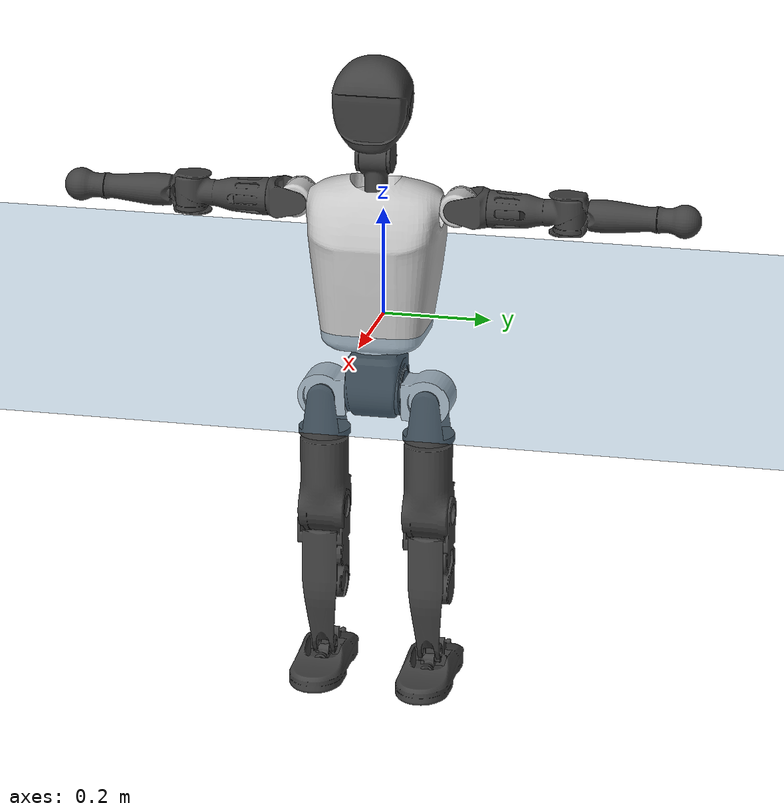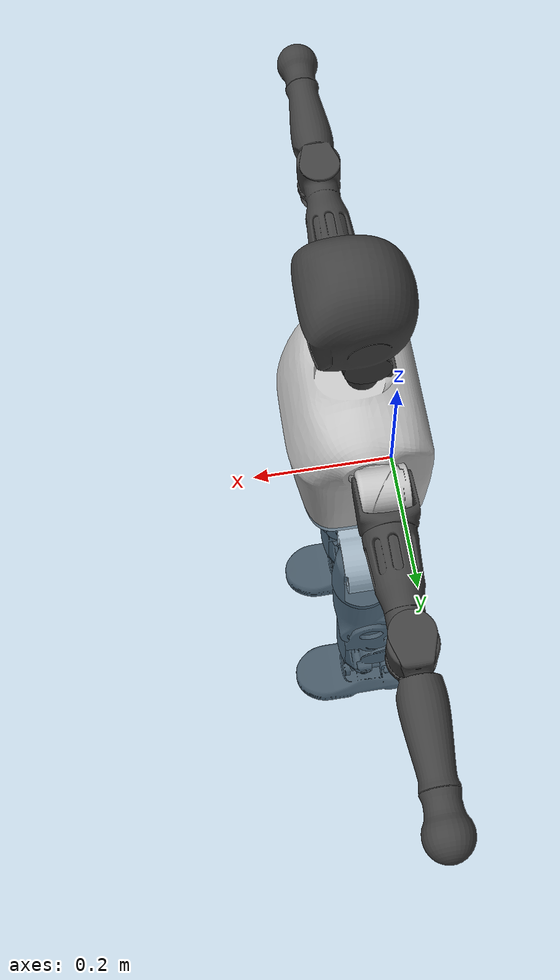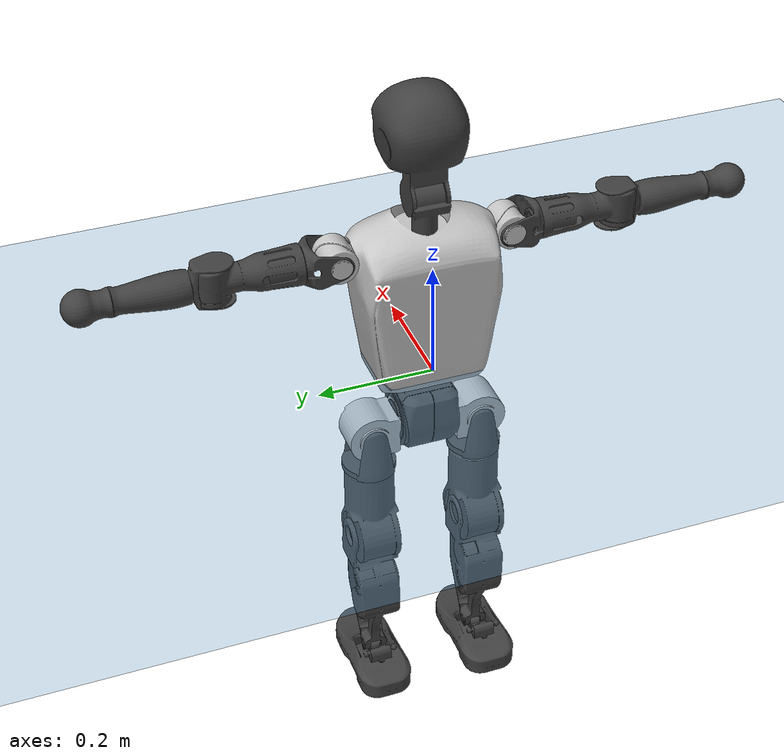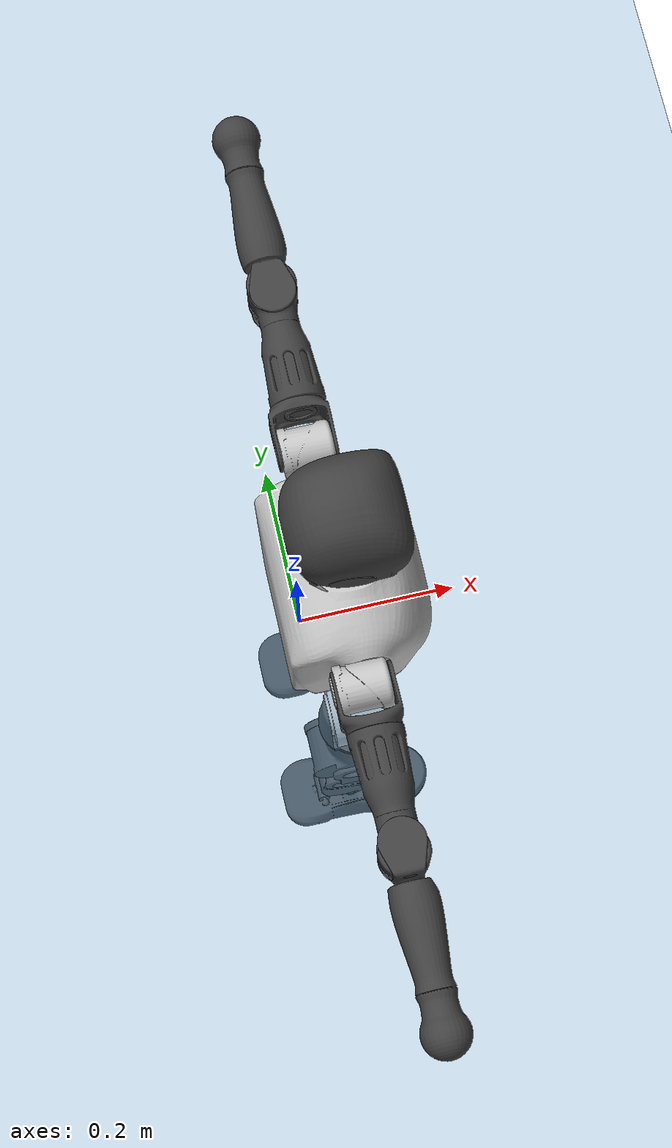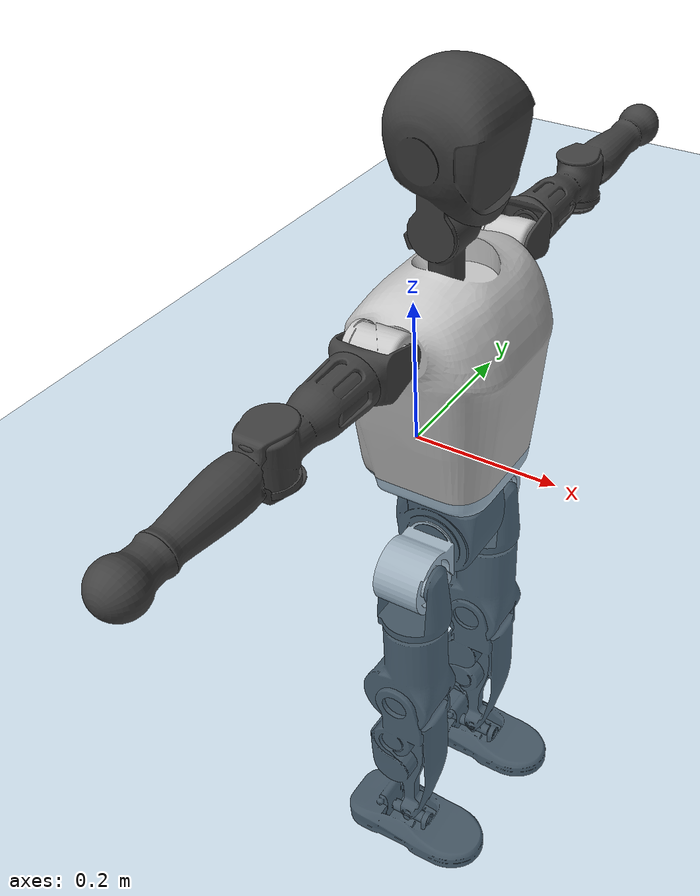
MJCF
<mujoco model="T1">
  <compiler angle="radian" assetdir="assets" balanceinertia="true" inertiafromgeom="false"/>

  <option timestep="0.005" density="1.2" viscosity="2e-05"/>

  <size nkey="1"/>

  <visual>
    <quality shadowsize="8192"/>
    <map shadowclip="0.5"/>
  </visual>

  <default>
    <default class="/">
      <joint armature="0.01" damping="0.01" frictionloss="0.1"/>
      <geom contype="0" conaffinity="0" group="1" solref="-1000 -80"/>
      <site size="0.01 0.005 0.005" group="5"/>
      <general forcelimited="true" biastype="affine" gainprm="25" biasprm="0 -25 -0.6"/>
      <default class="t1">
        <geom rgba="0.25 0.25 0.25 1"/>
        <default class="visual">
          <geom type="mesh" group="2"/>
        </default>
        <default class="collision">
          <geom group="3"/>
        </default>
        <default class="foot">
          <geom size="0.1115 0.05 0.015" type="box" condim="6" group="4" priority="1" solimp="0.015 1 0.015"/>
        </default>
        <default class="reward_collision_sphere">
          <geom group="5" rgba="1 0 0 1"/>
        </default>
      </default>
    </default>
  </default>

  <asset>
    <texture type="skybox" colorspace="auto" name="//unnamed_texture_0" builtin="gradient" rgb1="0.95 0.95 0.95" rgb2="0.95 0.95 0.95" width="100" height="600"/>
    <texture type="2d" colorspace="auto" name="texplane" builtin="checker" rgb1="0.345 0.575 0.748" rgb2="0.345 0.575 0.748" markrgb="1 1 1" width="512" height="512"/>
    <material name="MatPlane" class="/" texture="texplane" texuniform="true" texrepeat="2 2" specular="0.9"/>
    <mesh name="Trunk" class="/" file="Trunk.stl"/>
    <mesh name="H1" class="/" file="H1.stl"/>
    <mesh name="H2" class="/" file="H2.stl"/>
    <mesh name="AL1" class="/" file="AL1.stl"/>
    <mesh name="AL2" class="/" file="AL2.stl"/>
    <mesh name="AL3" class="/" file="AL3.stl"/>
    <mesh name="left_hand_link" class="/" file="left_hand_link.stl"/>
    <mesh name="AR1" class="/" file="AR1.stl"/>
    <mesh name="AR2" class="/" file="AR2.stl"/>
    <mesh name="AR3" class="/" file="AR3.stl"/>
    <mesh name="right_hand_link" class="/" file="right_hand_link.stl"/>
    <mesh name="Waist" class="/" file="Waist.stl"/>
    <mesh name="Hip_Pitch_Left" class="/" file="Hip_Pitch_Left.stl"/>
    <mesh name="Hip_Roll_Left" class="/" file="Hip_Roll_Left.stl"/>
    <mesh name="Hip_Yaw_Left" class="/" file="Hip_Yaw_Left.stl"/>
    <mesh name="Shank_Left" class="/" file="Shank_Left.stl"/>
    <mesh name="Ankle_Cross_Left" class="/" file="Ankle_Cross_Left.stl"/>
    <mesh name="left_foot_link" class="/" file="left_foot_link.stl"/>
    <mesh name="Hip_Pitch_Right" class="/" file="Hip_Pitch_Right.stl"/>
    <mesh name="Hip_Roll_Right" class="/" file="Hip_Roll_Right.stl"/>
    <mesh name="Hip_Yaw_Right" class="/" file="Hip_Yaw_Right.stl"/>
    <mesh name="Shank_Right" class="/" file="Shank_Right.stl"/>
    <mesh name="Ankle_Cross_Right" class="/" file="Ankle_Cross_Right.stl"/>
    <mesh name="right_foot_link" class="/" file="right_foot_link.stl"/>
  </asset>

  <worldbody>
    <geom name="floor" class="/" size="100 100 0.125" type="plane" group="0" material="MatPlane"/>
    <light name="toplight_shadow" class="/" pos="0 0 5" dir="0.0990148 0.0990148 -0.990148" type="directional" ambient="0.04 0.04 0.04" diffuse="0.55 0.55 0.55" specular="0.12 0.12 0.12"/>
    <light name="toplight_fill" class="/" pos="0 0 5" dir="0.0990148 0.0990148 -0.990148" type="directional" castshadow="false" ambient="0.04 0.04 0.04" diffuse="0.3 0.3 0.3" specular="0.08 0.08 0.08"/>
    <body name="trunk" childclass="t1" pos="0.000795563 -0.000147935 -1.91799e-05" quat="1 -0.000162212 -0.000159932 -0.000213622">
      <inertial pos="0.0434176 -0.000317429 0.109145" quat="0.999907 0.00215523 -0.0134801 -0.000195917" mass="9.43281" diaginertia="0.0294104 0.054163 0.0676964"/>
      <joint name="//unnamed_joint_0" type="free" armature="0" damping="0" frictionloss="0"/>
      <geom name="//unnamed_geom_1" class="visual" rgba="0.76 0.76 0.76 1" mesh="Trunk"/>
      <geom name="//unnamed_geom_2" class="collision" size="0.0690465 0.092062 0.138093" pos="0.0475799 0 0.124395" type="box"/>
      <geom name="//unnamed_geom_3" class="reward_collision_sphere" size="0.105871" pos="0.0475799 0 0.103662"/>
      <geom name="//unnamed_geom_4" class="reward_collision_sphere" size="0.0138093" pos="0.0475799 0.0792405 0"/>
      <geom name="//unnamed_geom_5" class="reward_collision_sphere" size="0.0138093" pos="0.0475799 -0.0792405 0"/>
      <geom name="//unnamed_geom_6" class="reward_collision_sphere" size="0.0138093" pos="0.0475799 0.0997498 0.186592"/>
      <geom name="//unnamed_geom_7" class="reward_collision_sphere" size="0.0138093" pos="0.0475799 -0.0997498 0.186592"/>
      <site name="imu" pos="-0.0119664 0.00310782 0.00626676" size="0.0092062"/>
      <camera name="track" pos="0 -1.86448 0" quat="0.707107 0.707107 0 0" mode="trackcom"/>
      <camera name="ego_camera" pos="0.0967458 0 0.435381" quat="-0.5 -0.5 0.5 0.5"/>
      <body name="H1" pos="0.0465398 -0.0027402 0.249096" quat="1 0.000414799 0.000390231 0.000158113">
        <inertial pos="-0.00184541 -0.00162989 0.0598587" quat="0.757736 -0.0138454 0.0093644 0.652347" mass="0.353198" diaginertia="7.60844e-05 0.000152256 0.000179579"/>
        <joint name="AAHead_yaw" pos="0 0 0" axis="-0.00840386 -0.00838653 0.99993" range="-1.58094 1.55214" armature="0.0100834" damping="0.00811407" frictionloss="0.0924128"/>
        <geom name="//unnamed_geom_8" class="visual" mesh="H1"/>
        <body name="H2" pos="-0.00136261 -0.000258095 0.0642908" quat="1 -0.00050783 -9.1208e-05 -0.000621119">
          <inertial pos="0.00601838 -0.0016689 0.102276" quat="0.988889 0.10222 -0.0750347 -0.0775819" mass="0.509513" diaginertia="0.000652989 0.00137092 0.00208761"/>
          <joint name="Head_pitch" pos="0 0 0" axis="-0.00012529 -1 -7.26135e-05" range="-1.24269 0.350706" armature="0.00958593" damping="0.010793" frictionloss="0.093082"/>
          <geom name="//unnamed_geom_9" class="visual" mesh="H2"/>
          <geom name="//unnamed_geom_10" class="collision" size="0.0736496" pos="0.00792998 0 0.114028"/>
          <geom name="//unnamed_geom_11" class="reward_collision_sphere" size="0.0828558" pos="0.01586 0 0.103662"/>
        </body>
      </body>
      <body name="AL1" pos="0.046316 0.102241 0.227493" quat="1 1.29113e-05 0.00052015 -4.61497e-05">
        <inertial pos="-0.003015 0.0441488 -0.00156936" quat="0.504753 0.499574 -0.502503 0.493094" mass="0.41274" diaginertia="0.00043123 0.000913735 0.000349805"/>
        <joint name="Left_Shoulder_Pitch" pos="0 0 0" axis="-0.00220326 0.999996 0.00155377" stiffness="0.00818905" range="-3.31669 1.22312" armature="0.00954016" damping="0.00509389" frictionloss="0.0874918"/>
        <geom name="//unnamed_geom_12" class="visual" rgba="0.76 0.76 0.76 1" mesh="AL1"/>
        <body name="AL2" pos="-0.000619592 0.0467955 0.000822647" quat="1 0.000258352 -0.00025356 8.30154e-05">
          <inertial pos="0.00277239 0.0363841 -0.000314899" quat="0.487884 0.511963 -0.488009 0.511577" mass="0.126017" diaginertia="0.000131968 0.000258198 0.000216179"/>
          <joint name="Left_Shoulder_Roll" pos="0 0 0" axis="-0.999999 -0.00143943 -0.00019489" range="-1.55612 1.69778" armature="0.00925275" damping="0.0192104" frictionloss="0.0914612"/>
          <geom name="//unnamed_geom_13" class="visual" mesh="AL2"/>
          <body name="AL3" pos="0.00310263 0.0564384 0.000463523" quat="1 -0.000367336 8.69388e-05 -9.78439e-06">
            <inertial pos="-0.000145962 0.0785696 0.00144541" quat="0.702515 0.711642 0.00461923 -0.00411706" mass="0.789716" diaginertia="0.00407254 0.00891645 0.000734034"/>
            <joint name="Left_Elbow_Pitch" pos="0 0 0" axis="-0.000523692 -1 0.000360537" range="-2.28099 2.30491" armature="0.00828159" damping="0.00647791" frictionloss="0.0912833"/>
            <geom name="//unnamed_geom_14" class="visual" mesh="AL3"/>
            <geom name="//unnamed_geom_15" class="collision" size="0.0276186 0.0690465" pos="0 0.046612 0" quat="0.707105 0.707108 0 0" type="cylinder"/>
            <geom name="//unnamed_geom_16" class="reward_collision_sphere" size="0.0331423"/>
            <body name="left_hand_link" pos="-0.000351236 0.137249 -1.47364e-06" quat="1 0.000249488 -0.000197401 -0.000676496">
              <inertial pos="0.00241294 0.100375 0.000762171" quat="0.708086 0.706111 -0.00374485 -0.00273721" mass="0.252206" diaginertia="0.00253813 0.00571887 0.000249674"/>
              <joint name="Left_Elbow_Yaw" pos="0 0 0" axis="9.26901e-07 -1.19315e-05 1" range="-2.44562 -0.00747382" armature="0.0099023" damping="0.0177927" frictionloss="0.0993728"/>
              <geom name="//unnamed_geom_17" class="visual" mesh="left_hand_link"/>
              <geom name="//unnamed_geom_18" class="collision" size="0.0276186 0.0805543" pos="0 0.121191 0" quat="0.707105 0.707108 0 0" type="cylinder"/>
              <geom name="//unnamed_geom_19" class="reward_collision_sphere" size="0.046031"/>
              <geom name="//unnamed_geom_20" class="reward_collision_sphere" size="0.0322217" pos="0 0.102546 0"/>
              <geom name="//unnamed_geom_21" class="reward_collision_sphere" size="0.0322217" pos="0 0.200432 0"/>
            </body>
          </body>
        </body>
      </body>
      <body name="AR1" pos="0.0468237 -0.100363 0.227266" quat="1 0.000153271 0.000239377 -2.61843e-05">
        <inertial pos="-0.0012861 -0.0430868 -0.000179681" quat="0.504224 0.495525 -0.504303 0.495874" mass="0.411351" diaginertia="0.000433652 0.000913822 0.00034814"/>
        <joint name="Right_Shoulder_Pitch" pos="0 0 0" axis="0.000135319 -1 -0.000459936" stiffness="0.00972443" range="-1.21446 3.28855" armature="0.00959509" damping="0" frictionloss="0.0907882"/>
        <geom name="//unnamed_geom_22" class="visual" rgba="0.76 0.76 0.76 1" mesh="AR1"/>
        <body name="AR2" pos="0.00108041 -0.0435653 -0.00220621" quat="1 0.00012029 -1.62743e-05 7.16694e-05">
          <inertial pos="0.00269035 -0.0338975 -0.00215304" quat="0.511221 0.488758 -0.51045 0.48909" mass="0.126048" diaginertia="0.000126985 0.000238243 0.000211921"/>
          <joint name="Right_Shoulder_Roll" pos="0 0 0" axis="-0.999934 0.00615769 -0.00969916" range="-1.68982 1.57532" armature="0.00901204" damping="0.0204755" frictionloss="0.0897696"/>
          <geom name="//unnamed_geom_23" class="visual" mesh="AR2"/>
          <body name="AR3" pos="0.000772331 -0.0559885 -0.000753519" quat="1 3.31109e-05 0.000189669 -0.0001729">
            <inertial pos="-0.00272691 -0.0804913 -0.000183378" quat="0.707821 0.706392 -5.51937e-05 4.77525e-06" mass="0.794422" diaginertia="0.00405907 0.00897005 0.000764328"/>
            <joint name="Right_Elbow_Pitch" pos="0 0 0" axis="-0.000937469 1 2.30614e-05" range="-2.27399 2.25307" armature="0.00930826" damping="0.0142522" frictionloss="0.0811994"/>
            <geom name="//unnamed_geom_24" class="visual" mesh="AR3"/>
            <geom name="//unnamed_geom_25" class="collision" size="0.0276186 0.0690465" pos="0 -0.046612 0" quat="0.707105 0.707108 0 0" type="cylinder"/>
            <geom name="//unnamed_geom_26" class="reward_collision_sphere" size="0.0331423"/>
            <body name="right_hand_link" pos="-0.000362173 -0.136641 -0.0004882" quat="1 -0.000241659 1.32432e-05 0.000264142">
              <inertial pos="0.000585367 -0.101461 0.00291927" quat="0.706391 0.707822 -0.000271033 -0.000309002" mass="0.256201" diaginertia="0.0025361 0.00558319 0.000259421"/>
              <joint name="Right_Elbow_Yaw" pos="0 0 0" axis="0.000167561 -0.000164708 1" stiffness="0.00183721" range="0.00533951 2.45859" armature="0.00915635" damping="0.00866792" frictionloss="0.0818387"/>
              <geom name="//unnamed_geom_27" class="visual" mesh="right_hand_link"/>
              <geom name="//unnamed_geom_28" class="collision" size="0.0276186 0.0805543" pos="0 -0.121191 0" quat="0.707105 0.707108 0 0" type="cylinder"/>
              <geom name="//unnamed_geom_29" class="reward_collision_sphere" size="0.046031"/>
              <geom name="//unnamed_geom_30" class="reward_collision_sphere" size="0.0322217" pos="0 -0.102546 0"/>
              <geom name="//unnamed_geom_31" class="reward_collision_sphere" size="0.0322217" pos="0 -0.200432 0"/>
            </body>
          </body>
        </body>
      </body>
      <body name="Waist" pos="0.0503111 2.46521e-05 -0.120639" quat="1 0.00010324 0.000179031 0.000462064">
        <inertial pos="0.0011692 -0.000475096 0.00722574" quat="0.983537 0.00110114 -0.180685 0.00246299" mass="1.97753" diaginertia="0.00172959 0.00367507 0.00583394"/>
        <joint name="Waist" pos="0 0 0" axis="0.00840938 0.000390537 0.999965" range="-1.57952 1.56391" armature="0.00906013" damping="0.00847624" frictionloss="0.0819642"/>
        <geom name="//unnamed_geom_32" class="visual" mesh="Waist"/>
        <body name="Hip_Pitch_Left" pos="0.00193914 0.0977542 0.000793873" quat="1 0.00034265 0.00021939 -0.000787897">
          <inertial pos="0.000463782 -0.00881967 -0.0197708" quat="0.974934 0.221977 0.0150668 0.00162056" mass="0.791603" diaginertia="0.000559636 0.00104129 0.00153314"/>
          <joint name="Left_Hip_Pitch" pos="0 0 0" axis="-0.000883276 1 0.000402388" stiffness="0.00090533" range="-1.78169 1.57175" armature="0.00961136" damping="0.0193993" frictionloss="0.0926726"/>
          <geom name="//unnamed_geom_33" class="visual" rgba="0.76 0.76 0.76 1" mesh="Hip_Pitch_Left"/>
          <body name="Hip_Roll_Left" pos="0.00247401 0.000194681 -0.0209675" quat="0.999999 -0.00116052 -0.000632147 -0.000175049">
            <inertial pos="0.00199037 0.000927076 -0.0558589" quat="0.707577 -0.00483663 -0.00420913 0.706607" mass="0.285024" diaginertia="0.000512788 0.001038 0.000593499"/>
            <joint name="Left_Hip_Roll" pos="0 0 0" axis="-0.999931 -0.0114176 0.00291159" range="-1.51956 0.19928" armature="0.00909139" damping="0.0049693" frictionloss="0.0953861"/>
            <geom name="//unnamed_geom_34" class="visual" mesh="Hip_Roll_Left"/>
            <geom name="//unnamed_geom_35" class="reward_collision_sphere" size="0.0506341"/>
            <body name="Hip_Yaw_Left" pos="0.00107862 -0.000279112 -0.0855336" quat="0.999999 0.000769853 0.000854454 -3.23629e-05">
              <inertial pos="-0.00768895 0.000958344 -0.0916518" quat="0.697701 -0.0327375 -0.0268329 0.715137" mass="1.69177" diaginertia="0.00836188 0.0180088 0.00314295"/>
              <joint name="Left_Hip_Yaw" pos="0 0 0" axis="0.000860371 0.00117119 -0.999999" range="-0.955269 1.04901" armature="0.00915349" damping="0.00783791" frictionloss="0.100143"/>
              <geom name="//unnamed_geom_36" class="visual" mesh="Hip_Yaw_Left"/>
              <geom name="//unnamed_geom_37" class="collision" size="0.046031 0.0736496" type="cylinder"/>
              <body name="Shank_Left" pos="-0.0111721 0.00172983 -0.138652" quat="1 0.000104995 -1.4372e-05 8.81612e-07">
                <inertial pos="-0.00723119 -0.000208698 -0.129974" quat="0.99814 0.00959893 -0.019508 0.0569474" mass="1.34772" diaginertia="0.0109128 0.0251952 0.00225869"/>
                <joint name="Left_Knee_Pitch" pos="0 0 0" axis="-0.0061626 0.999977 -0.00282863" range="-0.00358443 2.36817" armature="0.00868877" damping="0.00784733" frictionloss="0.103249"/>
                <geom name="//unnamed_geom_38" class="visual" mesh="Shank_Left"/>
                <geom name="//unnamed_geom_39" class="collision" size="0.046031 0.0690465" pos="0 0 -0.124395" type="cylinder"/>
                <geom name="//unnamed_geom_40" class="reward_collision_sphere" size="0.0598403"/>
                <body name="Ankle_Cross_Left" pos="0.0023706 0.000475296 -0.291435" quat="1 -1.93221e-06 -3.13102e-05 -6.75566e-06">
                  <inertial pos="-0.0030566 -0.000585573 -0.00851519" quat="0.443553 0.551229 0.551117 0.442354" mass="0.0569298" diaginertia="9.0597e-06 1.81085e-05 1.34558e-05"/>
                  <joint name="Left_Ankle_Pitch" pos="0 0 0" axis="0.00027033 0.999986 -0.0053534" range="-0.875326 0.33041" armature="0.01035" damping="0.0150801" frictionloss="0.094139"/>
                  <geom name="//unnamed_geom_41" class="visual" mesh="Ankle_Cross_Left"/>
                  <body name="left_foot_link" pos="0.00180208 0.000452573 -0.0122559" quat="1 1.17362e-06 -1.76053e-06 4.81996e-06">
                    <inertial pos="-0.00246925 0.00105405 -0.00941399" quat="0.000713619 0.620995 -0.000794363 0.783814" mass="0.540442" diaginertia="0.00084364 0.00166272 0.00256128"/>
                    <joint name="Left_Ankle_Roll" pos="0 0 0" axis="-0.999994 0.000445567 0.00342121" range="-0.437773 0.445629" armature="0.00921174" damping="8.43622e-05" frictionloss="0.0934166"/>
                    <geom name="//unnamed_geom_42" class="visual" mesh="left_foot_link"/>
                    <geom name="left_foot" class="foot" size="0.101349 0.0444422 0.0142599" pos="0.00792998 0 -0.0155493"/>
                    <geom name="//unnamed_geom_44" class="reward_collision_sphere" size="0.0478722" pos="0.00792998 0 -0.0155493"/>
                    <geom name="//unnamed_geom_45" class="reward_collision_sphere" size="0.0276186" pos="0.0753348 -0.0214415 -0.0155493"/>
                    <geom name="//unnamed_geom_46" class="reward_collision_sphere" size="0.0276186" pos="-0.0555099 -0.0214415 -0.0155493"/>
                    <site name="left_foot" class="foot" pos="0.00792998 0 -0.0155493" size="0.0092062"/>
                  </body>
                </body>
              </body>
            </body>
          </body>
        </body>
        <body name="Hip_Pitch_Right" pos="-0.0001255 -0.0982113 -0.000424428" quat="1 0.000132607 -4.368e-05 0.000237764">
          <inertial pos="0.000594724 0.00720173 -0.0205139" quat="0.97227 -0.23338 0.0146783 -0.00315944" mass="0.796668" diaginertia="0.000548589 0.00105925 0.00148792"/>
          <joint name="Right_Hip_Pitch" pos="0 0 0" axis="0.00185457 -0.999991 0.0037859" range="-1.62235 1.84939" armature="0.00934807" damping="0.0171636" frictionloss="0.0812782"/>
          <geom name="//unnamed_geom_47" class="visual" rgba="0.76 0.76 0.76 1" mesh="Hip_Pitch_Right"/>
          <body name="Hip_Roll_Right" pos="0.00257534 0.000385085 -0.0216076" quat="1 -0.0002429 -0.000324005 3.92447e-06">
            <inertial pos="0.00202777 -0.0018592 -0.0540252" quat="0.709177 -0.00896745 -0.00293156 0.704968" mass="0.294053" diaginertia="0.00053538 0.00105568 0.000620367"/>
            <joint name="Right_Hip_Roll" pos="0 0 0" axis="-0.999896 -0.00660945 0.0128405" stiffness="0.00220279" range="-0.204214 1.59209" armature="0.00888302" damping="0.00718402" frictionloss="0.0885699"/>
            <geom name="//unnamed_geom_48" class="visual" mesh="Hip_Roll_Right"/>
            <geom name="//unnamed_geom_49" class="reward_collision_sphere" size="0.0506341"/>
            <body name="Hip_Yaw_Right" pos="-0.0010782 -0.000759786 -0.087044" quat="1 -3.12295e-06 -1.30995e-06 6.71126e-07">
              <inertial pos="-0.00522691 0.00176269 -0.0931174" quat="0.72162 -0.0295607 -0.0259102 0.691173" mass="1.69642" diaginertia="0.00815719 0.0179809 0.00313612"/>
              <joint name="Right_Hip_Yaw" pos="0 0 0" axis="0.000772671 -0.00176207 -0.999998" stiffness="0.00125597" range="-0.984211 0.983933" armature="0.00956658" damping="0.015366" frictionloss="0.0918862"/>
              <geom name="//unnamed_geom_50" class="visual" mesh="Hip_Yaw_Right"/>
              <geom name="//unnamed_geom_51" class="collision" size="0.046031 0.0736496" type="cylinder"/>
              <body name="Shank_Right" pos="-0.0107978 -0.00271647 -0.137853" quat="1 -7.86242e-06 -6.71269e-05 -8.14456e-05">
                <inertial pos="-0.00719099 0.00219956 -0.12697" quat="0.999259 -0.00137776 -0.0294594 -0.0247292" mass="1.41927" diaginertia="0.0107131 0.0240986 0.00234848"/>
                <joint name="Right_Knee_Pitch" pos="0 0 0" axis="0.00316058 -0.999993 -0.00212667" stiffness="0.000464203" range="-2.34312 0.00451553" armature="0.00922488" damping="0.00135036" frictionloss="0.0941109"/>
                <geom name="//unnamed_geom_52" class="visual" mesh="Shank_Right"/>
                <geom name="//unnamed_geom_53" class="collision" size="0.046031 0.0690465" pos="0 0 -0.124395" type="cylinder"/>
                <geom name="//unnamed_geom_54" class="reward_collision_sphere" size="0.0598403"/>
                <body name="Ankle_Cross_Right" pos="-0.00106705 -0.00105375 -0.290558" quat="1 0.00018418 -0.000106088 6.39935e-05">
                  <inertial pos="-0.00194502 -0.00157819 -0.00931138" quat="0.445906 0.541099 0.557033 0.445077" mass="0.0571509" diaginertia="9.11343e-06 1.70339e-05 1.3143e-05"/>
                  <joint name="Right_Ankle_Pitch" pos="0 0 0" axis="-0.00311722 -0.999987 -0.00414548" range="-0.355129 0.870092" armature="0.00963061" damping="0" frictionloss="0.0904344"/>
                  <geom name="//unnamed_geom_55" class="visual" mesh="Ankle_Cross_Right"/>
                  <body name="right_foot_link" pos="-0.00118234 -0.00133911 -0.01007" quat="1 2.0907e-06 -1.48629e-05 -4.45012e-06">
                    <inertial pos="0.000849761 -0.000693606 -0.00732706" quat="-0.00176873 0.61972 0.000146539 0.784821" mass="0.540514" diaginertia="0.000867615 0.00165954 0.00260272"/>
                    <joint name="Right_Ankle_Roll" pos="0 0 0" axis="-0.999996 -0.00277792 0.000257804" range="-0.448124 0.425991" armature="0.00931277" damping="0.0105994" frictionloss="0.0881742"/>
                    <geom name="//unnamed_geom_56" class="visual" mesh="right_foot_link"/>
                    <geom name="right_foot" class="foot" size="0.101004 0.043477 0.0136495" pos="0.00792998 0 -0.0155493"/>
                    <geom name="//unnamed_geom_58" class="reward_collision_sphere" size="0.0368248"/>
                    <geom name="//unnamed_geom_59" class="reward_collision_sphere" size="0.0276186" pos="0.00792998 0 -0.0155493"/>
                    <geom name="//unnamed_geom_60" class="reward_collision_sphere" size="0.0276186" pos="0.0753348 0.0214415 -0.0155493"/>
                    <geom name="//unnamed_geom_61" class="reward_collision_sphere" size="0.0276186" pos="-0.0555099 0.0214415 -0.0155493"/>
                    <site name="right_foot" class="foot" pos="0.00792998 0 -0.0155493" size="0.0092062"/>
                  </body>
                </body>
              </body>
            </body>
          </body>
        </body>
      </body>
    </body>
  </worldbody>

  <contact>
    <pair class="/" geom1="floor" geom2="left_foot" name="//unnamed_contact_0"/>
    <pair class="/" geom1="floor" geom2="right_foot" name="//unnamed_contact_1"/>
  </contact>

  <actuator>
    <general name="AAHead_yaw" class="/" joint="AAHead_yaw" forcerange="-6.69916 6.69916" gainprm="22.2326" biasprm="0 -22.2326 -0.518228"/>
    <general name="Head_pitch" class="/" joint="Head_pitch" forcerange="-6.26396 6.26396" gainprm="22.2326" biasprm="0 -22.2326 -0.518228"/>
    <general name="Left_Shoulder_Pitch" class="/" joint="Left_Shoulder_Pitch" forcerange="-16.7318 16.7318" gainprm="22.2326" biasprm="0 -22.2326 -0.518228"/>
    <general name="Left_Shoulder_Roll" class="/" joint="Left_Shoulder_Roll" forcerange="-16.1831 16.1831" gainprm="22.2326" biasprm="0 -22.2326 -0.518228"/>
    <general name="Left_Elbow_Pitch" class="/" joint="Left_Elbow_Pitch" forcerange="-17.4398 17.4398" gainprm="22.2326" biasprm="0 -22.2326 -0.518228"/>
    <general name="Left_Elbow_Yaw" class="/" joint="Left_Elbow_Yaw" forcerange="-16.8434 16.8434" gainprm="22.2326" biasprm="0 -22.2326 -0.518228"/>
    <general name="Right_Shoulder_Pitch" class="/" joint="Right_Shoulder_Pitch" forcerange="-17.0506 17.0506" gainprm="22.2326" biasprm="0 -22.2326 -0.518228"/>
    <general name="Right_Shoulder_Roll" class="/" joint="Right_Shoulder_Roll" forcerange="-17.1566 17.1566" gainprm="22.2326" biasprm="0 -22.2326 -0.518228"/>
    <general name="Right_Elbow_Pitch" class="/" joint="Right_Elbow_Pitch" forcerange="-16.7701 16.7701" gainprm="22.2326" biasprm="0 -22.2326 -0.518228"/>
    <general name="Right_Elbow_Yaw" class="/" joint="Right_Elbow_Yaw" forcerange="-15.907 15.907" gainprm="22.2326" biasprm="0 -22.2326 -0.518228"/>
    <general name="Waist" class="/" joint="Waist" forcerange="-28.1668 28.1668" gainprm="22.2326" biasprm="0 -22.2326 -0.518228"/>
    <general name="Left_Hip_Pitch" class="/" joint="Left_Hip_Pitch" forcerange="-41.3872 41.3872" gainprm="22.2326" biasprm="0 -22.2326 -0.518228"/>
    <general name="Left_Hip_Roll" class="/" joint="Left_Hip_Roll" forcerange="-26.982 26.982" gainprm="22.2326" biasprm="0 -22.2326 -0.518228"/>
    <general name="Left_Hip_Yaw" class="/" joint="Left_Hip_Yaw" forcerange="-26.2776 26.2776" gainprm="22.2326" biasprm="0 -22.2326 -0.518228"/>
    <general name="Left_Knee_Pitch" class="/" joint="Left_Knee_Pitch" forcerange="-53.9555 53.9555" gainprm="22.2326" biasprm="0 -22.2326 -0.518228"/>
    <general name="Left_Ankle_Pitch" class="/" joint="Left_Ankle_Pitch" forcerange="-18.4663 18.4663" gainprm="22.2326" biasprm="0 -22.2326 -0.518228"/>
    <general name="Left_Ankle_Roll" class="/" joint="Left_Ankle_Roll" forcerange="-13.5458 13.5458" gainprm="22.2326" biasprm="0 -22.2326 -0.518228"/>
    <general name="Right_Hip_Pitch" class="/" joint="Right_Hip_Pitch" forcerange="-40.5932 40.5932" gainprm="22.2326" biasprm="0 -22.2326 -0.518228"/>
    <general name="Right_Hip_Roll" class="/" joint="Right_Hip_Roll" forcerange="-28.0089 28.0089" gainprm="22.2326" biasprm="0 -22.2326 -0.518228"/>
    <general name="Right_Hip_Yaw" class="/" joint="Right_Hip_Yaw" forcerange="-28.6594 28.6594" gainprm="22.2326" biasprm="0 -22.2326 -0.518228"/>
    <general name="Right_Knee_Pitch" class="/" joint="Right_Knee_Pitch" forcerange="-52.0626 52.0626" gainprm="22.2326" biasprm="0 -22.2326 -0.518228"/>
    <general name="Right_Ankle_Pitch" class="/" joint="Right_Ankle_Pitch" forcerange="-17.0091 17.0091" gainprm="22.2326" biasprm="0 -22.2326 -0.518228"/>
    <general name="Right_Ankle_Roll" class="/" joint="Right_Ankle_Roll" forcerange="-13.2896 13.2896" gainprm="22.2326" biasprm="0 -22.2326 -0.518228"/>
  </actuator>

  <sensor>
    <gyro site="imu" name="imu_angular_velocity"/>
    <velocimeter site="imu" name="imu_linear_velocity"/>
    <framelinvel objtype="site" objname="left_foot" name="left_foot_global_linear_velocity"/>
    <framelinvel objtype="site" objname="right_foot" name="right_foot_global_linear_velocity"/>
  </sensor>

  <keyframe>
    <key name="home" qpos="0 0 0.6385 1 0 0 0 0 0 0 1.4 0 -0.4 0 -1.4 0 0.4 0 -0.4 0 0 0.8 -0.4 0 0.4 0 0 -0.8 0.4 0"/>
  </keyframe>
</mujoco>
